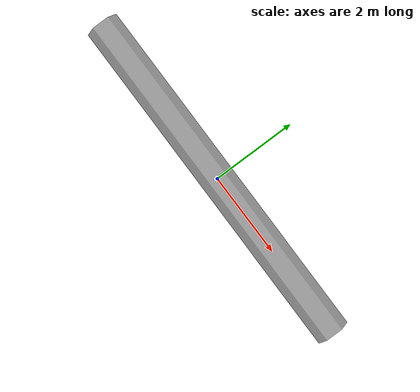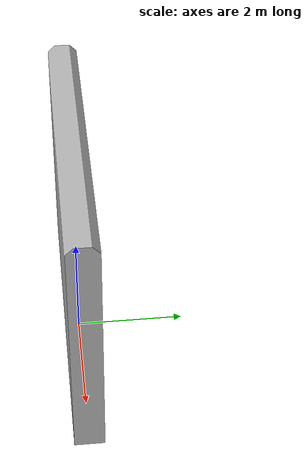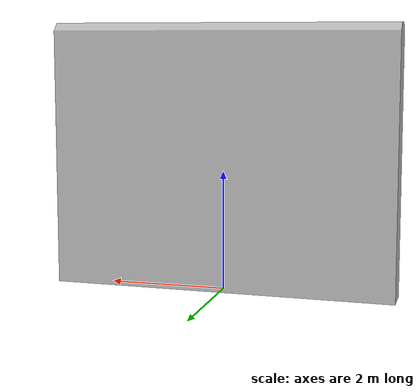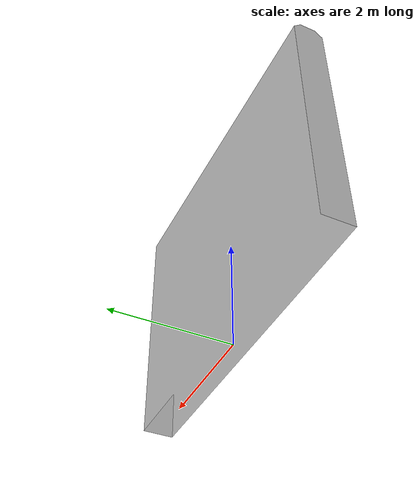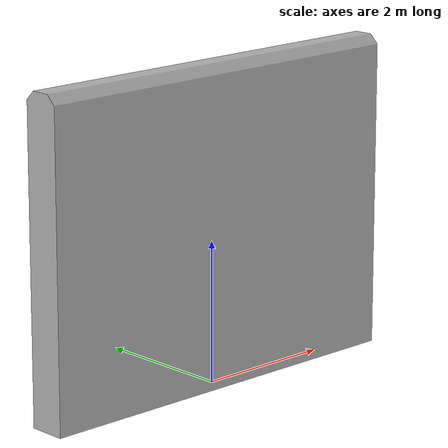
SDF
<?xml version='1.0'?>
<sdf version='1.6'>
  <model name='aws_Wall_01'>
<link name='body'>
        <pose frame=''>0 0 0 0 -0 0</pose>
        <inertial>
          <mass>500</mass>
          <pose frame=''>0 0 0 0 -0 0</pose>
          <inertia>
            <ixx>1</ixx>
            <ixy>0</ixy>
            <ixz>0</ixz>
            <iyy>1</iyy>
            <iyz>0</iyz>
            <izz>1</izz>
          </inertia>
        </inertial>
        <self_collide>0</self_collide>
        <kinematic>0</kinematic>
        <gravity>1</gravity>
        <visual name='visual'>
          <geometry>
            <mesh>
              <uri>file://models/aws_robomaker_racetrack_Wall_01/meshes/aws_Wall_01_visual.obj</uri>
              <scale>0.0259853 0.0259853 0.0259853</scale>
            </mesh>
          </geometry>
          <material>
            <shader type='pixel'>
              <normal_map>__default__</normal_map>
            </shader>
          </material>
          <pose frame=''>0 0 0 0 -0 0</pose>
          <cast_shadows>1</cast_shadows>
          <transparency>0</transparency>
        <meta>
          <layer>1</layer>
        </meta>
        </visual>
        <collision name='collision_0'>
          <laser_retro>0</laser_retro>
          <max_contacts>10</max_contacts>
          <pose frame=''>0 0 0 0 -0 0</pose>
          <geometry>
            <mesh>
              <uri>file://models/aws_robomaker_racetrack_Wall_01/meshes/aws_Wall_01_collision.obj</uri>
              <scale>0.0259853 0.0259853 0.0259853</scale>
            </mesh>
          </geometry>
          <surface>
            <friction>
              <ode>
                <mu>1</mu>
                <mu2>1</mu2>
                <fdir1>0 0 0</fdir1>
                <slip1>0</slip1>
                <slip2>0</slip2>
              </ode>
              <torsional>
                <coefficient>1</coefficient>
                <patch_radius>0</patch_radius>
                <surface_radius>0</surface_radius>
                <use_patch_radius>1</use_patch_radius>
                <ode>
                  <slip>0</slip>
                </ode>
              </torsional>
            </friction>
            <bounce>
              <restitution_coefficient>0</restitution_coefficient>
              <threshold>1e+06</threshold>
            </bounce>
            <contact>
              <collide_without_contact>0</collide_without_contact>
              <collide_without_contact_bitmask>1</collide_without_contact_bitmask>
              <collide_bitmask>1</collide_bitmask>
              <ode>
                <soft_cfm>0</soft_cfm>
                <soft_erp>0.2</soft_erp>
                <kp>1e+13</kp>
                <kd>1</kd>
                <max_vel>0.01</max_vel>
                <min_depth>0</min_depth>
              </ode>
              <bullet>
                <split_impulse>1</split_impulse>
                <split_impulse_penetration_threshold>-0.01</split_impulse_penetration_threshold>
                <soft_cfm>0</soft_cfm>
                <soft_erp>0.2</soft_erp>
                <kp>1e+13</kp>
                <kd>1</kd>
              </bullet>
            </contact>
          </surface>
        </collision>
      </link>
    <static>1</static>
  </model>
</sdf>
